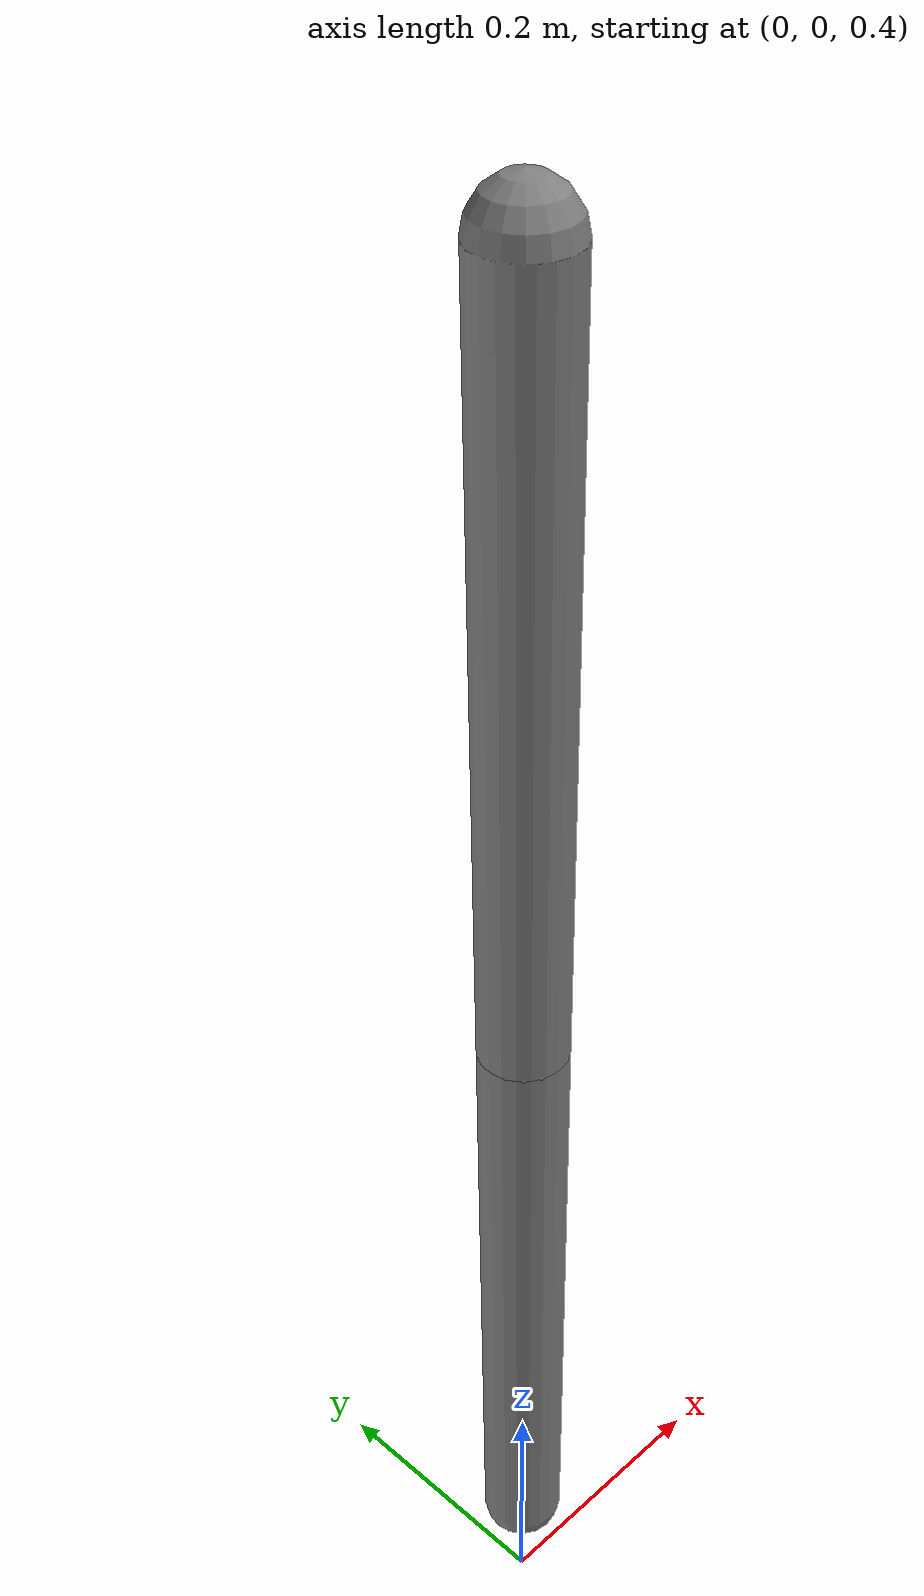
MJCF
<mujoco model="double_pendulum">
  <option timestep="0.005" gravity="0 0 -9.81"/>
  <worldbody>
    <body name="upper" pos="0 0 1.5">
      <joint name="shoulder" type="hinge" axis="0 1 0"/>
      <geom name="upper_rod" type="capsule" fromto="0 0 0 0 0 -0.5" size="0.03" density="1000"/>
      <body name="lower" pos="0 0 -0.5">
        <joint name="elbow" type="hinge" axis="0 1 0"/>
        <geom name="lower_rod" type="capsule" fromto="0 0 0 0 0 -0.5" size="0.03" density="1000"/>
      </body>
    </body>
  </worldbody>
  <sensor>
    <jointpos name="shoulder_pos" joint="shoulder"/>
    <jointpos name="elbow_pos" joint="elbow"/>
  </sensor>
</mujoco>
